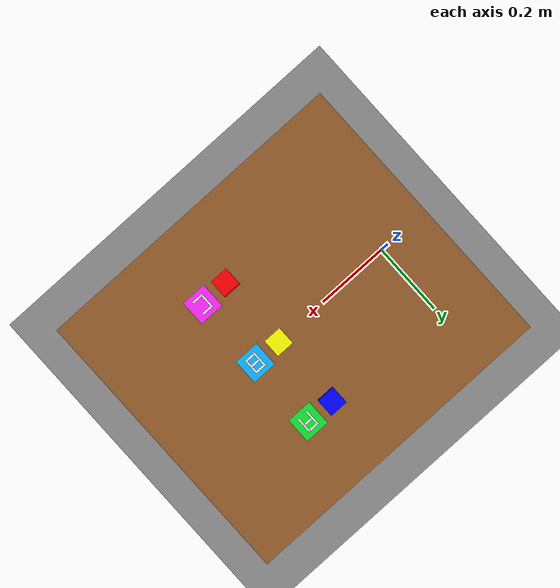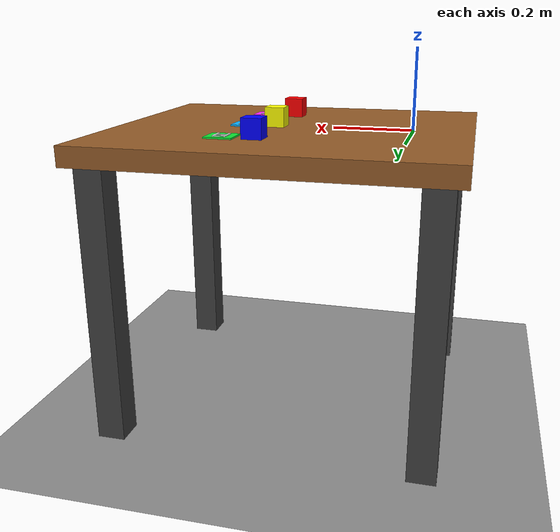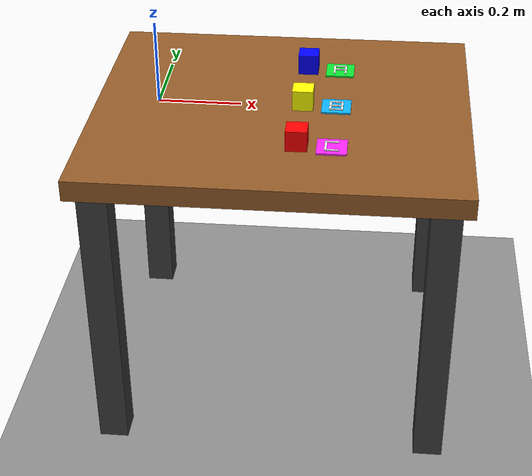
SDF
<?xml version="1.0" ?>

<sdf version="1.8">

  <world name="ur3_task">

    <!-- PHYSICS                                            -->
    <physics name="1ms" type="ignored">
      <max_step_size>0.001</max_step_size>
      <real_time_factor>1.0</real_time_factor>
    </physics>

    <!-- LIGHT                                              -->
    <light type="directional" name="sun">

      <cast_shadows>true</cast_shadows>

      <pose>0 0 10 0 0 0</pose>

      <diffuse>0.9 0.9 0.9 1</diffuse>
      <specular>0.2 0.2 0.2 1</specular>

      <attenuation>
        <range>1000</range>
        <constant>0.9</constant>
        <linear>0.01</linear>
        <quadratic>0.001</quadratic>
      </attenuation>

      <direction>-0.5 0.1 -0.9</direction>

    </light>

    <!-- GROUND                                             -->
    <model name="ground_plane">

      <static>true</static>

      <pose>0 0 -0.75 0 0 0</pose>

      <link name="link">

        <collision name="collision">
          <geometry>
            <plane>
              <normal>0 0 1</normal>
              <size>10 10</size>
            </plane>
          </geometry>
        </collision>

        <visual name="visual">
          <geometry>
            <plane>
              <normal>0 0 1</normal>
              <size>10 10</size>
            </plane>
          </geometry>

          <material>
            <ambient>0.45 0.45 0.45 1</ambient>
            <diffuse>0.55 0.55 0.55 1</diffuse>
          </material>
        </visual>

      </link>

    </model>

    <!-- TABLE                                              -->
    <model name="work_table">

      <static>true</static>

      <link name="table_link">

        <!-- TABLE TOP -->
        <collision name="table_top_collision">
          <pose>0.30 0 -0.025 0 0 0</pose>

          <geometry>
            <box>
              <size>0.90 0.80 0.05</size>
            </box>
          </geometry>
        </collision>

        <visual name="table_top_visual">
          <pose>0.30 0 -0.025 0 0 0</pose>

          <geometry>
            <box>
              <size>0.90 0.80 0.05</size>
            </box>
          </geometry>

          <material>
            <ambient>0.45 0.28 0.12 1</ambient>
            <diffuse>0.58 0.36 0.16 1</diffuse>
          </material>
        </visual>

        <!-- LEG 1 -->
        <collision name="leg_1_collision">
          <pose>-0.09 -0.34 -0.40 0 0 0</pose>

          <geometry>
            <box>
              <size>0.07 0.07 0.70</size>
            </box>
          </geometry>
        </collision>

        <visual name="leg_1_visual">
          <pose>-0.09 -0.34 -0.40 0 0 0</pose>

          <geometry>
            <box>
              <size>0.07 0.07 0.70</size>
            </box>
          </geometry>

          <material>
            <ambient>0.18 0.18 0.18 1</ambient>
            <diffuse>0.25 0.25 0.25 1</diffuse>
          </material>
        </visual>

        <!-- LEG 2 -->
        <collision name="leg_2_collision">
          <pose>-0.09 0.34 -0.40 0 0 0</pose>

          <geometry>
            <box>
              <size>0.07 0.07 0.70</size>
            </box>
          </geometry>
        </collision>

        <visual name="leg_2_visual">
          <pose>-0.09 0.34 -0.40 0 0 0</pose>

          <geometry>
            <box>
              <size>0.07 0.07 0.70</size>
            </box>
          </geometry>

          <material>
            <ambient>0.18 0.18 0.18 1</ambient>
            <diffuse>0.25 0.25 0.25 1</diffuse>
          </material>
        </visual>

        <!-- LEG 3 -->
        <collision name="leg_3_collision">
          <pose>0.69 -0.34 -0.40 0 0 0</pose>

          <geometry>
            <box>
              <size>0.07 0.07 0.70</size>
            </box>
          </geometry>
        </collision>

        <visual name="leg_3_visual">
          <pose>0.69 -0.34 -0.40 0 0 0</pose>

          <geometry>
            <box>
              <size>0.07 0.07 0.70</size>
            </box>
          </geometry>

          <material>
            <ambient>0.18 0.18 0.18 1</ambient>
            <diffuse>0.25 0.25 0.25 1</diffuse>
          </material>
        </visual>

        <!-- LEG 4 -->
        <collision name="leg_4_collision">
          <pose>0.69 0.34 -0.40 0 0 0</pose>

          <geometry>
            <box>
              <size>0.07 0.07 0.70</size>
            </box>
          </geometry>
        </collision>

        <visual name="leg_4_visual">
          <pose>0.69 0.34 -0.40 0 0 0</pose>

          <geometry>
            <box>
              <size>0.07 0.07 0.70</size>
            </box>
          </geometry>

          <material>
            <ambient>0.18 0.18 0.18 1</ambient>
            <diffuse>0.25 0.25 0.25 1</diffuse>
          </material>
        </visual>

      </link>

    </model>

    <!-- RED CUBE                                           -->
    <model name="red_cube">

      <static>true</static>

      <pose>0.35 -0.20 0.025 0 0 0</pose>

      <link name="link">

        <collision name="collision">
          <geometry>
            <box>
              <size>0.05 0.05 0.05</size>
            </box>
          </geometry>
        </collision>

        <visual name="visual">
          <geometry>
            <box>
              <size>0.05 0.05 0.05</size>
            </box>
          </geometry>

          <material>
            <ambient>1 0 0 1</ambient>
            <diffuse>1 0 0 1</diffuse>
          </material>
        </visual>

      </link>

    </model>

    <!-- YELLOW CUBE                                        -->
    <model name="yellow_cube">

      <static>true</static>

      <pose>0.35 0 0.025 0 0 0</pose>

      <link name="link">

        <collision name="collision">
          <geometry>
            <box>
              <size>0.05 0.05 0.05</size>
            </box>
          </geometry>
        </collision>

        <visual name="visual">
          <geometry>
            <box>
              <size>0.05 0.05 0.05</size>
            </box>
          </geometry>

          <material>
            <ambient>1 1 0 1</ambient>
            <diffuse>1 1 0 1</diffuse>
          </material>
        </visual>

      </link>

    </model>

    <!-- BLUE CUBE                                          -->
    <model name="blue_cube">

      <static>true</static>

      <pose>0.35 0.20 0.025 0 0 0</pose>

      <link name="link">

        <collision name="collision">
          <geometry>
            <box>
              <size>0.05 0.05 0.05</size>
            </box>
          </geometry>
        </collision>

        <visual name="visual">
          <geometry>
            <box>
              <size>0.05 0.05 0.05</size>
            </box>
          </geometry>

          <material>
            <ambient>0 0 1 1</ambient>
            <diffuse>0 0 1 1</diffuse>
          </material>
        </visual>

      </link>

    </model>

    <!-- ZONE A                                             -->
    <model name="zone_a">

      <static>true</static>

      <pose>0.43 0.20 0.002 0 0 0</pose>

      <link name="link">

        <visual name="zone_visual">
          <geometry>
            <box>
              <size>0.07 0.07 0.004</size>
            </box>
          </geometry>

          <material>
            <ambient>0.05 0.75 0.15 1</ambient>
            <diffuse>0.05 0.90 0.20 1</diffuse>
          </material>
        </visual>

      </link>

    </model>

    <!-- LETTER A -->
    <model name="label_a">

      <static>true</static>

      <pose>0.43 0.20 0.005 0 0 0</pose>

      <link name="link">

        <visual name="left">
          <pose>-0.014 0 0 0 0 0</pose>
          <geometry>
            <box>
              <size>0.005 0.044 0.002</size>
            </box>
          </geometry>
          <material>
            <ambient>1 1 1 1</ambient>
            <diffuse>1 1 1 1</diffuse>
          </material>
        </visual>

        <visual name="right">
          <pose>0.014 0 0 0 0 0</pose>
          <geometry>
            <box>
              <size>0.005 0.044 0.002</size>
            </box>
          </geometry>
          <material>
            <ambient>1 1 1 1</ambient>
            <diffuse>1 1 1 1</diffuse>
          </material>
        </visual>

        <visual name="top">
          <pose>0 0.019 0 0 0 0</pose>
          <geometry>
            <box>
              <size>0.033 0.005 0.002</size>
            </box>
          </geometry>
          <material>
            <ambient>1 1 1 1</ambient>
            <diffuse>1 1 1 1</diffuse>
          </material>
        </visual>

        <visual name="middle">
          <pose>0 0 0 0 0 0</pose>
          <geometry>
            <box>
              <size>0.033 0.005 0.002</size>
            </box>
          </geometry>
          <material>
            <ambient>1 1 1 1</ambient>
            <diffuse>1 1 1 1</diffuse>
          </material>
        </visual>

      </link>

    </model>

    <!-- ZONE B                                             -->
    <model name="zone_b">

      <static>true</static>

      <pose>0.43 0.00 0.002 0 0 0</pose>

      <link name="link">

        <visual name="zone_visual">
          <geometry>
            <box>
              <size>0.07 0.07 0.004</size>
            </box>
          </geometry>

          <material>
            <ambient>0.05 0.55 0.90 1</ambient>
            <diffuse>0.05 0.70 1.0 1</diffuse>
          </material>
        </visual>

      </link>

    </model>

    <!-- LETTER B -->
    <model name="label_b">

      <static>true</static>

      <pose>0.43 0.00 0.005 0 0 0</pose>

      <link name="link">

        <visual name="left">
          <pose>-0.014 0 0 0 0 0</pose>
          <geometry>
            <box>
              <size>0.005 0.044 0.002</size>
            </box>
          </geometry>
          <material>
            <ambient>1 1 1 1</ambient>
            <diffuse>1 1 1 1</diffuse>
          </material>
        </visual>

        <visual name="top">
          <pose>0 0.019 0 0 0 0</pose>
          <geometry>
            <box>
              <size>0.033 0.005 0.002</size>
            </box>
          </geometry>
          <material>
            <ambient>1 1 1 1</ambient>
            <diffuse>1 1 1 1</diffuse>
          </material>
        </visual>

        <visual name="middle">
          <pose>0 0 0 0 0 0</pose>
          <geometry>
            <box>
              <size>0.033 0.005 0.002</size>
            </box>
          </geometry>
          <material>
            <ambient>1 1 1 1</ambient>
            <diffuse>1 1 1 1</diffuse>
          </material>
        </visual>

        <visual name="bottom">
          <pose>0 -0.019 0 0 0 0</pose>
          <geometry>
            <box>
              <size>0.033 0.005 0.002</size>
            </box>
          </geometry>
          <material>
            <ambient>1 1 1 1</ambient>
            <diffuse>1 1 1 1</diffuse>
          </material>
        </visual>

        <visual name="right_top">
          <pose>0.014 0.010 0 0 0 0</pose>
          <geometry>
            <box>
              <size>0.005 0.020 0.002</size>
            </box>
          </geometry>
          <material>
            <ambient>1 1 1 1</ambient>
            <diffuse>1 1 1 1</diffuse>
          </material>
        </visual>

        <visual name="right_bottom">
          <pose>0.014 -0.010 0 0 0 0</pose>
          <geometry>
            <box>
              <size>0.005 0.020 0.002</size>
            </box>
          </geometry>
          <material>
            <ambient>1 1 1 1</ambient>
            <diffuse>1 1 1 1</diffuse>
          </material>
        </visual>

      </link>

    </model>

    <!-- ZONE C                                             -->
    <model name="zone_c">

      <static>true</static>

      <pose>0.43 -0.20 0.002 0 0 0</pose>

      <link name="link">

        <visual name="zone_visual">
          <geometry>
            <box>
              <size>0.07 0.07 0.004</size>
            </box>
          </geometry>

          <material>
            <ambient>0.8 0.10 0.8 1</ambient>
            <diffuse>1.0 0.15 1.0 1</diffuse>
          </material>
        </visual>

      </link>

    </model>

    <!-- LETTER C -->
    <model name="label_c">

      <static>true</static>

      <pose>0.43 -0.20 0.005 0 0 0</pose>

      <link name="link">

        <visual name="left">
          <pose>-0.014 0 0 0 0 0</pose>
          <geometry>
            <box>
              <size>0.005 0.044 0.002</size>
            </box>
          </geometry>
          <material>
            <ambient>1 1 1 1</ambient>
            <diffuse>1 1 1 1</diffuse>
          </material>
        </visual>

        <visual name="top">
          <pose>0 0.019 0 0 0 0</pose>
          <geometry>
            <box>
              <size>0.033 0.005 0.002</size>
            </box>
          </geometry>
          <material>
            <ambient>1 1 1 1</ambient>
            <diffuse>1 1 1 1</diffuse>
          </material>
        </visual>

        <visual name="bottom">
          <pose>0 -0.019 0 0 0 0</pose>
          <geometry>
            <box>
              <size>0.033 0.005 0.002</size>
            </box>
          </geometry>
          <material>
            <ambient>1 1 1 1</ambient>
            <diffuse>1 1 1 1</diffuse>
          </material>
        </visual>

      </link>

    </model>

    <!-- GAZEBO SYSTEMS                                     -->
    <plugin
      filename="gz-sim-physics-system"
      name="gz::sim::systems::Physics">
    </plugin>

    <plugin
      filename="gz-sim-user-commands-system"
      name="gz::sim::systems::UserCommands">
    </plugin>

    <plugin
      filename="gz-sim-scene-broadcaster-system"
      name="gz::sim::systems::SceneBroadcaster">
    </plugin>

  </world>

</sdf>
